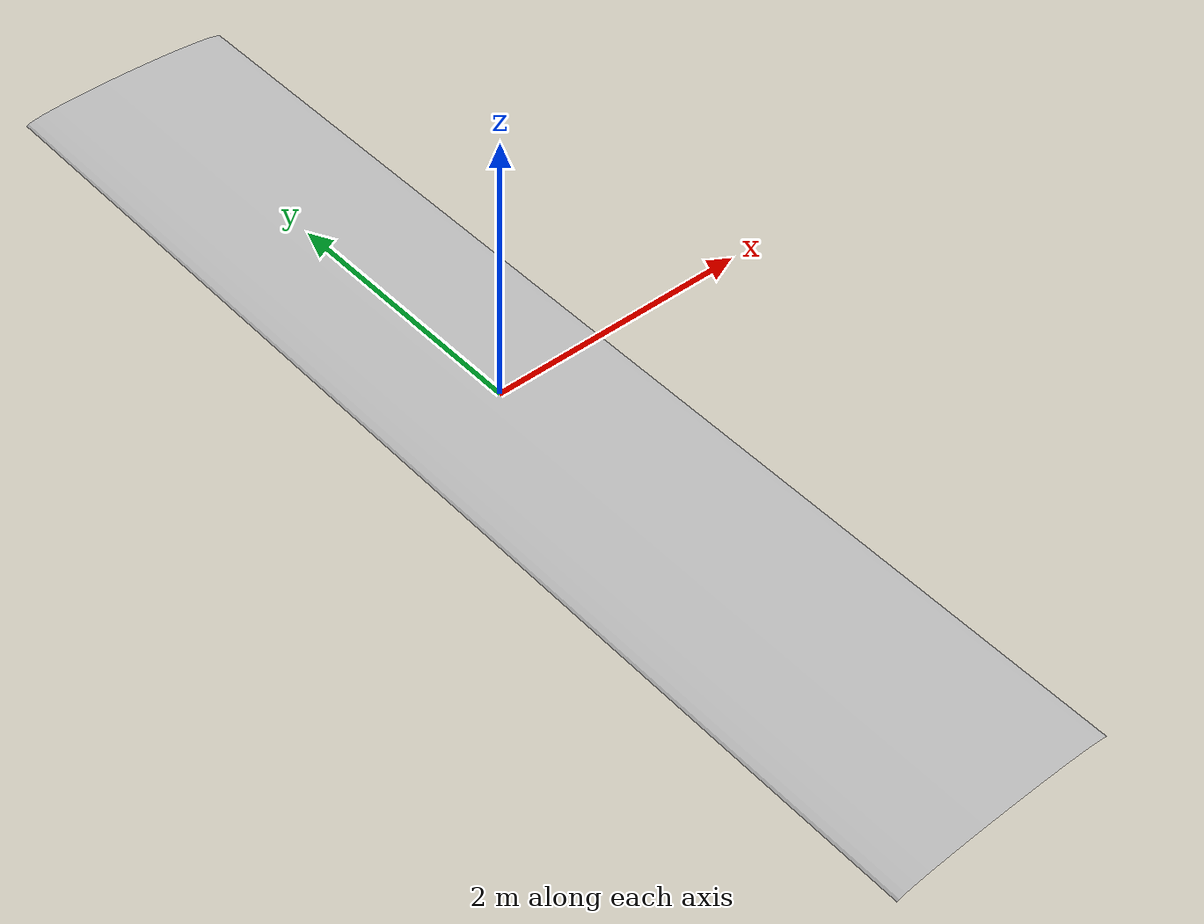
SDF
<?xml version='1.0'?>
<sdf version='1.4'>
  <model name='speed_bump'>
    <static>true</static>
    <link name="speed_bump">
      <visual name="visual">
            <geometry>
                <mesh>
                    <uri>model://speed_bump/materials/meshes/speed_bump.dae</uri>
		    		<scale>4.5 4.18 6</scale>
                </mesh>
            </geometry>
        </visual>
        <collision name="collision">
            <surface>
                <friction>
                    <ode>
                        <mu>100</mu>
                        <mu2>50</mu2>
                    </ode>
                </friction>
            </surface>
            <geometry>
                <mesh>
                    <uri>model://speed_bump/materials/meshes/speed_bump.dae</uri>
					<scale>4.5 4.18 6</scale>
                </mesh>
            </geometry>
        </collision>
    </link>
  </model>
</sdf>
